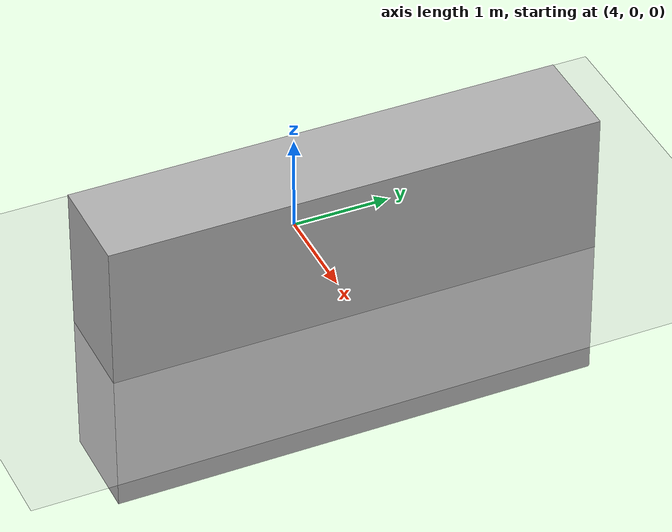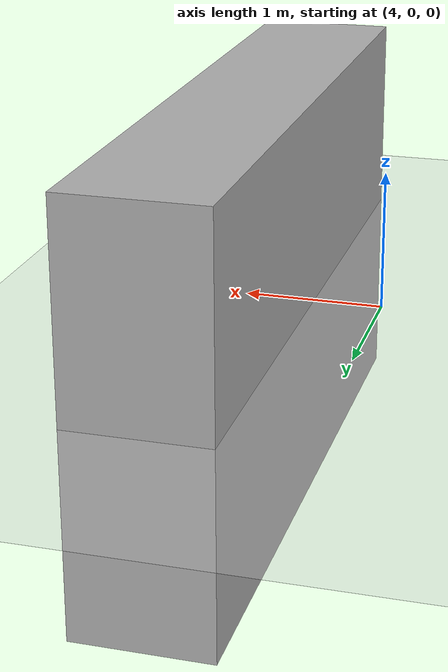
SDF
<sdf version="1.7">
 <world name="simulation_world">
  <light name="sun" type="directional">
   <pose>0 0 10 0 -0 0</pose>
   <cast_shadows>false</cast_shadows>
   <intensity>1</intensity>
   <direction>-0.5 0.1 -0.9</direction>
   <diffuse>0.8 0.8 0.8 1</diffuse>
   <specular>0.2 0.2 0.2 1</specular>
   <attenuation>
    <range>1000</range>
    <linear>0.01</linear>
    <constant>0.90000000000000002</constant>
    <quadratic>0.001</quadratic>
   </attenuation>
   <spot><inner_angle>0</inner_angle><outer_angle>0</outer_angle><falloff>0</falloff></spot>
  </light>
  <model name="ground_plane">
   <static>1</static>
   <link name="link">
    <collision name="collision">
     <geometry><plane><normal>0 0 1</normal><size>100 100</size></plane></geometry>
     <surface>
      <contact><collide_bitmask>65535</collide_bitmask></contact>
      <friction><ode><mu>100</mu><mu2>50</mu2></ode></friction>
     </surface>
    </collision>
    <visual name="visual">
     <cast_shadows>0</cast_shadows>
     <geometry><plane><normal>0 0 1</normal><size>100 100</size></plane></geometry>
     <material>
      <ambient>0.8 0.8 0.8 1</ambient>
      <diffuse>0.8 0.8 0.8 1</diffuse>
      <specular>0.8 0.8 0.8
                            1</specular>
     </material>
    </visual>
   </link>
  </model>
  <gravity>0 0 -9.8</gravity>
  <magnetic_field>6e-06 2.3e-05 -4.2e-05</magnetic_field>
  <atmosphere type="adiabatic"/>
  <physics type="ode">
   <max_step_size>0.005</max_step_size>
   <real_time_factor>1</real_time_factor>
   <real_time_update_rate>200</real_time_update_rate>
  </physics>
  <plugin name="ignition::gazebo::systems::Physics" filename="ignition-gazebo-physics-system"/>
  <plugin name="ignition::gazebo::systems::UserCommands" filename="ignition-gazebo-user-commands-system"/>
  <plugin name="ignition::gazebo::systems::SceneBroadcaster" filename="ignition-gazebo-scene-broadcaster-system"/>
  <plugin name="ignition::gazebo::systems::Contact" filename="ignition-gazebo-contact-system"/>
  <scene><ambient>0.4 0.4 0.4 1</ambient><background>0.7 0.7 0.7 1</background><shadows>0</shadows></scene>
  <audio><device>default</device></audio>
  <spherical_coordinates>
   <surface_model>EARTH_WGS84</surface_model>
   <latitude_deg>46.114997</latitude_deg>
   <longitude_deg>0.5604634</longitude_deg>
   <elevation>0</elevation>
   <heading_deg>0</heading_deg>
  </spherical_coordinates>
  <model name="wall">
   <pose>5.0 0.0 0 0 -0 1.57</pose>
   <link name="box_link">
    <collision name="box_collision"><geometry><box><size>5 1 3</size></box></geometry></collision>
    <inertial>
     <inertia><ixx>0.16666</ixx><ixy>0</ixy><ixz>0</ixz><iyy>0.16666</iyy><iyz>0</iyz><izz>0.16666</izz></inertia>
     <mass>100</mass>
    </inertial>
    <visual name="box_0">
     <cast_shadows>0</cast_shadows>
     <geometry><box><size>5 1 3</size></box></geometry>
     <material>
      <ambient>0.3 0.3 0.3 1</ambient>
      <diffuse>0.7 0.7 0.7 1</diffuse>
      <specular>1 1 1 1</specular>
     </material>
    </visual>
   </link>
   <static>true</static>
  </model>
 </world>
</sdf>
